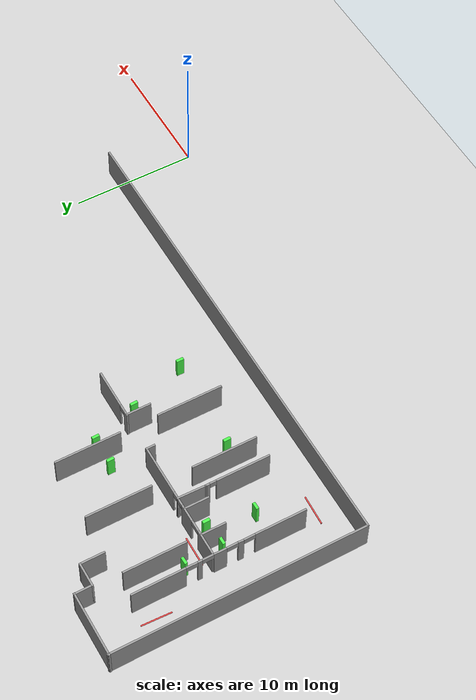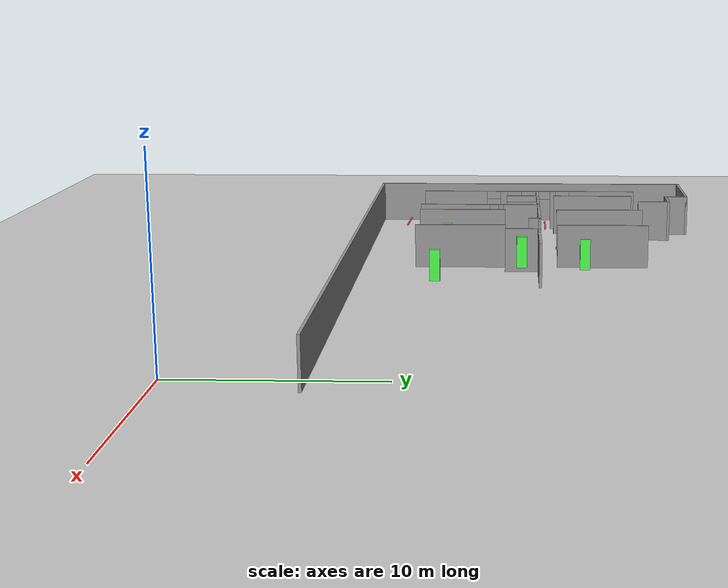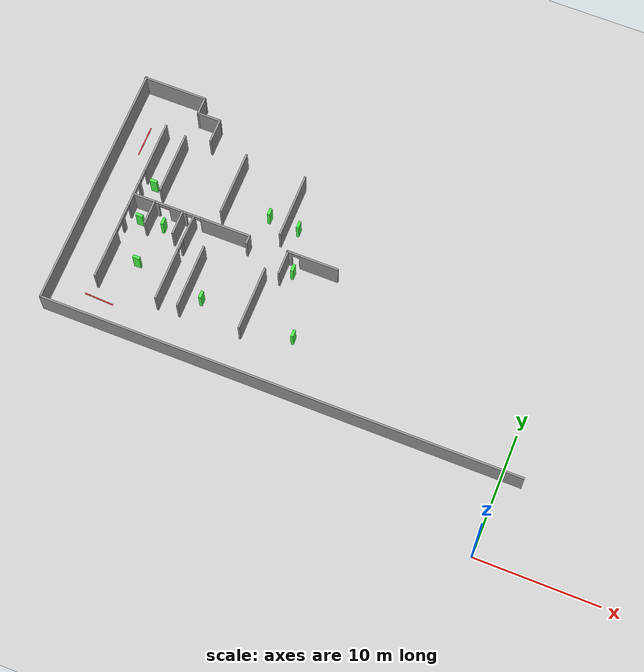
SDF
<sdf version="1.6">
 <world name="default">
  <model name="ground_plane">
   <static>1</static>
   <link name="link">
    <collision name="collision">
     <geometry><plane><normal>0 0 1</normal><size>100 100</size></plane></geometry>
     <surface><friction><ode><mu>100</mu><mu2>50</mu2></ode></friction></surface>
    </collision>
    <visual name="visual">
     <cast_shadows>0</cast_shadows>
     <geometry><plane><normal>0 0 1</normal><size>100 100</size></plane></geometry>
     <material>
      <script><uri>file://media/materials/scripts/gazebo.material</uri><name>Gazebo/Grey</name></script>
     </material>
    </visual>
   </link>
  </model>
  <model name="se1floor1">
   <pose>-5.19256 -0.852459 0 0 -0 0</pose>
   <link name="Wall_0">
    <collision name="Wall_0_Collision">
     <geometry><box><size>20.25 0.15 2.5</size></box></geometry>
     <pose>0 0 1.25 0 -0 0</pose>
    </collision>
    <visual name="Wall_0_Visual">
     <pose>0 0 1.25 0 -0 0</pose>
     <geometry><box><size>20.25 0.15 2.5</size></box></geometry>
     <material>
      <script><uri>file://media/materials/scripts/gazebo.material</uri><name>Gazebo/Grey</name></script>
      <ambient>1 1 1 1</ambient>
     </material>
     <meta><layer>0</layer></meta>
    </visual>
    <pose>-32.1 17.225 0 0 0 -1.5708</pose>
   </link>
   <link name="Wall_1">
    <collision name="Wall_1_Collision">
     <geometry><box><size>39 0.15 2.5</size></box></geometry>
     <pose>0 0 1.25 0 -0 0</pose>
    </collision>
    <visual name="Wall_1_Visual">
     <pose>0 0 1.25 0 -0 0</pose>
     <geometry><box><size>39 0.15 2.5</size></box></geometry>
     <material>
      <script><uri>file://media/materials/scripts/gazebo.material</uri><name>Gazebo/Grey</name></script>
      <ambient>1 1 1 1</ambient>
     </material>
     <meta><layer>0</layer></meta>
    </visual>
    <pose>-12.675 7.175 0 0 -0 0</pose>
   </link>
   <link name="Wall_13">
    <collision name="Wall_13_Collision">
     <geometry><box><size>2 0.15 2.5</size></box></geometry>
     <pose>0 0 1.25 0 -0 0</pose>
    </collision>
    <visual name="Wall_13_Visual">
     <pose>0 0 1.25 0 -0 0</pose>
     <geometry><box><size>2 0.15 2.5</size></box></geometry>
     <material>
      <script><uri>file://media/materials/scripts/gazebo.material</uri><name>Gazebo/Grey</name></script>
      <ambient>1 1 1 1</ambient>
     </material>
     <meta><layer>0</layer></meta>
    </visual>
    <pose>-25.2 24.95 0 0 -0 1.5708</pose>
   </link>
   <link name="Wall_15">
    <collision name="Wall_15_Collision">
     <geometry><box><size>2 0.15 2.5</size></box></geometry>
     <pose>0 0 1.25 0 -0 0</pose>
    </collision>
    <visual name="Wall_15_Visual">
     <pose>0 0 1.25 0 -0 0</pose>
     <geometry><box><size>2 0.15 2.5</size></box></geometry>
     <material>
      <script><uri>file://media/materials/scripts/gazebo.material</uri><name>Gazebo/Grey</name></script>
      <ambient>1 1 1 1</ambient>
     </material>
     <meta><layer>0</layer></meta>
    </visual>
    <pose>-26.125 25.875 0 0 -0 3.14159</pose>
   </link>
   <link name="Wall_16">
    <collision name="Wall_16_Collision">
     <geometry><box><size>1.5 0.15 2.5</size></box></geometry>
     <pose>0 0 1.25 0 -0 0</pose>
    </collision>
    <visual name="Wall_16_Visual">
     <pose>0 0 1.25 0 -0 0</pose>
     <geometry><box><size>1.5 0.15 2.5</size></box></geometry>
     <material>
      <script><uri>file://media/materials/scripts/gazebo.material</uri><name>Gazebo/Grey</name></script>
      <ambient>1 1 1 1</ambient>
     </material>
     <meta><layer>0</layer></meta>
    </visual>
    <pose>-27.05 26.55 0 0 -0 1.5708</pose>
   </link>
   <link name="Wall_17">
    <collision name="Wall_17_Collision">
     <geometry><box><size>5.25 0.15 2.5</size></box></geometry>
     <pose>0 0 1.25 0 -0 0</pose>
    </collision>
    <visual name="Wall_17_Visual">
     <pose>0 0 1.25 0 -0 0</pose>
     <geometry><box><size>5.25 0.15 2.5</size></box></geometry>
     <material>
      <script><uri>file://media/materials/scripts/gazebo.material</uri><name>Gazebo/Grey</name></script>
      <ambient>1 1 1 1</ambient>
     </material>
     <meta><layer>0</layer></meta>
    </visual>
    <pose>-29.6 27.225 0 0 -0 3.14159</pose>
   </link>
   <link name="Wall_19">
    <pose>-28.9578 17.0953 0 0 0 -1.5708</pose>
    <visual name="Wall_19_Visual_0">
     <pose>-4.75272 0 1.25 0 -0 0</pose>
     <geometry><box><size>4.24456 0.15 2.5</size></box></geometry>
     <material>
      <script><uri>file://media/materials/scripts/gazebo.material</uri><name>Gazebo/Grey</name></script>
      <ambient>1 1 1 1</ambient>
     </material>
     <meta><layer>0</layer></meta>
    </visual>
    <collision name="Wall_19_Collision_0">
     <geometry><box><size>4.24456 0.15 2.5</size></box></geometry>
     <pose>-4.75272 0 1.25 0 -0 0</pose>
    </collision>
    <visual name="Wall_19_Visual_1">
     <pose>-1.55236 0 1.25 0 -0 0</pose>
     <geometry><box><size>0.356145 0.15 2.5</size></box></geometry>
     <material>
      <script><uri>file://media/materials/scripts/gazebo.material</uri><name>Gazebo/Grey</name></script>
      <ambient>1 1 1 1</ambient>
     </material>
     <meta><layer>0</layer></meta>
    </visual>
    <collision name="Wall_19_Collision_1">
     <geometry><box><size>0.356145 0.15 2.5</size></box></geometry>
     <pose>-1.55236 0 1.25 0 -0 0</pose>
    </collision>
    <visual name="Wall_19_Visual_2">
     <pose>0.02945 0 1.25 0 -0 0</pose>
     <geometry><box><size>1.00748 0.15 2.5</size></box></geometry>
     <material>
      <script><uri>file://media/materials/scripts/gazebo.material</uri><name>Gazebo/Grey</name></script>
      <ambient>1 1 1 1</ambient>
     </material>
     <meta><layer>0</layer></meta>
    </visual>
    <collision name="Wall_19_Collision_2">
     <geometry><box><size>1.00748 0.15 2.5</size></box></geometry>
     <pose>0.02945 0 1.25 0 -0 0</pose>
    </collision>
    <visual name="Wall_19_Visual_3">
     <pose>1.65779 0 1.25 0 -0 0</pose>
     <geometry><box><size>0.449194 0.15 2.5</size></box></geometry>
     <material>
      <script><uri>file://media/materials/scripts/gazebo.material</uri><name>Gazebo/Grey</name></script>
      <ambient>1 1 1 1</ambient>
     </material>
     <meta><layer>0</layer></meta>
    </visual>
    <collision name="Wall_19_Collision_3">
     <geometry><box><size>0.449194 0.15 2.5</size></box></geometry>
     <pose>1.65779 0 1.25 0 -0 0</pose>
    </collision>
    <visual name="Wall_19_Visual_4">
     <pose>4.82869 0 1.25 0 -0 0</pose>
     <geometry><box><size>4.09262 0.15 2.5</size></box></geometry>
     <material>
      <script><uri>file://media/materials/scripts/gazebo.material</uri><name>Gazebo/Grey</name></script>
      <ambient>1 1 1 1</ambient>
     </material>
     <meta><layer>0</layer></meta>
    </visual>
    <collision name="Wall_19_Collision_4">
     <geometry><box><size>4.09262 0.15 2.5</size></box></geometry>
     <pose>4.82869 0 1.25 0 -0 0</pose>
    </collision>
    <visual name="Wall_19_Visual_5">
     <pose>-2.18044 0 2.25 0 -0 0</pose>
     <geometry><box><size>0.9 0.15 0.5</size></box></geometry>
     <material>
      <script><uri>file://media/materials/scripts/gazebo.material</uri><name>Gazebo/Grey</name></script>
      <ambient>1 1 1 1</ambient>
     </material>
     <meta><layer>0</layer></meta>
    </visual>
    <collision name="Wall_19_Collision_5">
     <geometry><box><size>0.9 0.15 0.5</size></box></geometry>
     <pose>-2.18044 0 2.25 0 -0 0</pose>
    </collision>
    <visual name="Wall_19_Visual_6">
     <pose>-0.92429 0 2.25 0 -0 0</pose>
     <geometry><box><size>0.9 0.15 0.5</size></box></geometry>
     <material>
      <script><uri>file://media/materials/scripts/gazebo.material</uri><name>Gazebo/Grey</name></script>
      <ambient>1 1 1 1</ambient>
     </material>
     <meta><layer>0</layer></meta>
    </visual>
    <collision name="Wall_19_Collision_6">
     <geometry><box><size>0.9 0.15 0.5</size></box></geometry>
     <pose>-0.92429 0 2.25 0 -0 0</pose>
    </collision>
    <visual name="Wall_19_Visual_7">
     <pose>0.983191 0 2.25 0 -0 0</pose>
     <geometry><box><size>0.9 0.15 0.5</size></box></geometry>
     <material>
      <script><uri>file://media/materials/scripts/gazebo.material</uri><name>Gazebo/Grey</name></script>
      <ambient>1 1 1 1</ambient>
     </material>
     <meta><layer>0</layer></meta>
    </visual>
    <collision name="Wall_19_Collision_7">
     <geometry><box><size>0.9 0.15 0.5</size></box></geometry>
     <pose>0.983191 0 2.25 0 -0 0</pose>
    </collision>
    <visual name="Wall_19_Visual_8">
     <pose>2.33238 0 2.25 0 -0 0</pose>
     <geometry><box><size>0.9 0.15 0.5</size></box></geometry>
     <material>
      <script><uri>file://media/materials/scripts/gazebo.material</uri><name>Gazebo/Grey</name></script>
      <ambient>1 1 1 1</ambient>
     </material>
     <meta><layer>0</layer></meta>
    </visual>
    <collision name="Wall_19_Collision_8">
     <geometry><box><size>0.9 0.15 0.5</size></box></geometry>
     <pose>2.33238 0 2.25 0 -0 0</pose>
    </collision>
   </link>
   <link name="Wall_54">
    <collision name="Wall_54_Collision">
     <geometry><box><size>5.25 0.15 2.5</size></box></geometry>
     <pose>0 0 1.25 0 -0 0</pose>
    </collision>
    <visual name="Wall_54_Visual">
     <pose>0 0 1.25 0 -0 0</pose>
     <geometry><box><size>5.25 0.15 2.5</size></box></geometry>
     <material>
      <script><uri>file://media/materials/scripts/gazebo.material</uri><name>Gazebo/Grey</name></script>
      <ambient>1 1 1 1</ambient>
     </material>
     <meta><layer>0</layer></meta>
    </visual>
    <pose>-17.1338 12.9629 0 0 0 -1.5708</pose>
   </link>
   <link name="Wall_56">
    <collision name="Wall_56_Collision">
     <geometry><box><size>5.25 0.15 2.5</size></box></geometry>
     <pose>0 0 1.25 0 -0 0</pose>
    </collision>
    <visual name="Wall_56_Visual">
     <pose>0 0 1.25 0 -0 0</pose>
     <geometry><box><size>5.25 0.15 2.5</size></box></geometry>
     <material>
      <script><uri>file://media/materials/scripts/gazebo.material</uri><name>Gazebo/Grey</name></script>
      <ambient>1 1 1 1</ambient>
     </material>
     <meta><layer>0</layer></meta>
    </visual>
    <pose>-22.163 12.9094 0 0 0 -1.5708</pose>
   </link>
   <link name="Wall_58">
    <pose>-23.9286 12.8559 0 0 0 -1.5708</pose>
    <visual name="Wall_58_Visual_0">
     <pose>-2.4292 0 1.25 0 -0 0</pose>
     <geometry><box><size>0.391598 0.15 2.5</size></box></geometry>
     <material>
      <script><uri>file://media/materials/scripts/gazebo.material</uri><name>Gazebo/Grey</name></script>
      <ambient>1 1 1 1</ambient>
     </material>
     <meta><layer>0</layer></meta>
    </visual>
    <collision name="Wall_58_Collision_0">
     <geometry><box><size>0.391598 0.15 2.5</size></box></geometry>
     <pose>-2.4292 0 1.25 0 -0 0</pose>
    </collision>
    <visual name="Wall_58_Visual_1">
     <pose>0.45472 0 1.25 0 -0 0</pose>
     <geometry><box><size>4.34056 0.15 2.5</size></box></geometry>
     <material>
      <script><uri>file://media/materials/scripts/gazebo.material</uri><name>Gazebo/Grey</name></script>
      <ambient>1 1 1 1</ambient>
     </material>
     <meta><layer>0</layer></meta>
    </visual>
    <collision name="Wall_58_Collision_1">
     <geometry><box><size>4.34056 0.15 2.5</size></box></geometry>
     <pose>0.45472 0 1.25 0 -0 0</pose>
    </collision>
    <visual name="Wall_58_Visual_2">
     <pose>-1.97448 0 2.25 0 -0 0</pose>
     <geometry><box><size>0.517842 0.15 0.5</size></box></geometry>
     <material>
      <script><uri>file://media/materials/scripts/gazebo.material</uri><name>Gazebo/Grey</name></script>
      <ambient>1 1 1 1</ambient>
     </material>
     <meta><layer>0</layer></meta>
    </visual>
    <collision name="Wall_58_Collision_2">
     <geometry><box><size>0.517842 0.15 0.5</size></box></geometry>
     <pose>-1.97448 0 2.25 0 -0 0</pose>
    </collision>
   </link>
   <link name="Wall_60">
    <pose>-24.0508 17.5995 0 0 -0 0</pose>
    <visual name="Wall_60_Visual_0">
     <pose>-3.833 0 1.25 0 -0 0</pose>
     <geometry><box><size>2.084 0.15 2.5</size></box></geometry>
     <material>
      <script><uri>file://media/materials/scripts/gazebo.material</uri><name>Gazebo/Grey</name></script>
      <ambient>1 1 1 1</ambient>
     </material>
     <meta><layer>0</layer></meta>
    </visual>
    <collision name="Wall_60_Collision_0">
     <geometry><box><size>2.084 0.15 2.5</size></box></geometry>
     <pose>-3.833 0 1.25 0 -0 0</pose>
    </collision>
    <visual name="Wall_60_Visual_1">
     <pose>-1.18501 0 1.25 0 -0 0</pose>
     <geometry><box><size>1.41198 0.15 2.5</size></box></geometry>
     <material>
      <script><uri>file://media/materials/scripts/gazebo.material</uri><name>Gazebo/Grey</name></script>
      <ambient>1 1 1 1</ambient>
     </material>
     <meta><layer>0</layer></meta>
    </visual>
    <collision name="Wall_60_Collision_1">
     <geometry><box><size>1.41198 0.15 2.5</size></box></geometry>
     <pose>-1.18501 0 1.25 0 -0 0</pose>
    </collision>
    <visual name="Wall_60_Visual_2">
     <pose>0.144387 0 1.25 0 -0 0</pose>
     <geometry><box><size>0.191206 0.15 2.5</size></box></geometry>
     <material>
      <script><uri>file://media/materials/scripts/gazebo.material</uri><name>Gazebo/Grey</name></script>
      <ambient>1 1 1 1</ambient>
     </material>
     <meta><layer>0</layer></meta>
    </visual>
    <collision name="Wall_60_Collision_2">
     <geometry><box><size>0.191206 0.15 2.5</size></box></geometry>
     <pose>0.144387 0 1.25 0 -0 0</pose>
    </collision>
    <visual name="Wall_60_Visual_3">
     <pose>2.7963 0 1.25 0 -0 0</pose>
     <geometry><box><size>4.1574 0.15 2.5</size></box></geometry>
     <material>
      <script><uri>file://media/materials/scripts/gazebo.material</uri><name>Gazebo/Grey</name></script>
      <ambient>1 1 1 1</ambient>
     </material>
     <meta><layer>0</layer></meta>
    </visual>
    <collision name="Wall_60_Collision_3">
     <geometry><box><size>4.1574 0.15 2.5</size></box></geometry>
     <pose>2.7963 0 1.25 0 -0 0</pose>
    </collision>
    <visual name="Wall_60_Visual_4">
     <pose>-2.341 0 2.25 0 -0 0</pose>
     <geometry><box><size>0.9 0.15 0.5</size></box></geometry>
     <material>
      <script><uri>file://media/materials/scripts/gazebo.material</uri><name>Gazebo/Grey</name></script>
      <ambient>1 1 1 1</ambient>
     </material>
     <meta><layer>0</layer></meta>
    </visual>
    <collision name="Wall_60_Collision_4">
     <geometry><box><size>0.9 0.15 0.5</size></box></geometry>
     <pose>-2.341 0 2.25 0 -0 0</pose>
    </collision>
    <visual name="Wall_60_Visual_5">
     <pose>-0.21512 0 2.25 0 -0 0</pose>
     <geometry><box><size>0.527809 0.15 0.5</size></box></geometry>
     <material>
      <script><uri>file://media/materials/scripts/gazebo.material</uri><name>Gazebo/Grey</name></script>
      <ambient>1 1 1 1</ambient>
     </material>
     <meta><layer>0</layer></meta>
    </visual>
    <collision name="Wall_60_Collision_5">
     <geometry><box><size>0.527809 0.15 0.5</size></box></geometry>
     <pose>-0.21512 0 2.25 0 -0 0</pose>
    </collision>
    <visual name="Wall_60_Visual_6">
     <pose>0.478798 0 2.25 0 -0 0</pose>
     <geometry><box><size>0.477615 0.15 0.5</size></box></geometry>
     <material>
      <script><uri>file://media/materials/scripts/gazebo.material</uri><name>Gazebo/Grey</name></script>
      <ambient>1 1 1 1</ambient>
     </material>
     <meta><layer>0</layer></meta>
    </visual>
    <collision name="Wall_60_Collision_6">
     <geometry><box><size>0.477615 0.15 0.5</size></box></geometry>
     <pose>0.478798 0 2.25 0 -0 0</pose>
    </collision>
   </link>
   <link name="Wall_61">
    <collision name="Wall_61_Collision">
     <geometry><box><size>0.75 0.15 2.5</size></box></geometry>
     <pose>0 0 1.25 0 -0 0</pose>
    </collision>
    <visual name="Wall_61_Visual">
     <pose>0 0 1.25 0 -0 0</pose>
     <geometry><box><size>0.75 0.15 2.5</size></box></geometry>
     <material>
      <script><uri>file://media/materials/scripts/gazebo.material</uri><name>Gazebo/Grey</name></script>
      <ambient>1 1 1 1</ambient>
     </material>
     <meta><layer>0</layer></meta>
    </visual>
    <pose>-19.2508 17.2995 0 0 0 -1.5708</pose>
   </link>
   <link name="Wall_63">
    <collision name="Wall_63_Collision">
     <geometry><box><size>2 0.15 2.5</size></box></geometry>
     <pose>0 0 1.25 0 -0 0</pose>
    </collision>
    <visual name="Wall_63_Visual">
     <pose>0 0 1.25 0 -0 0</pose>
     <geometry><box><size>2 0.15 2.5</size></box></geometry>
     <material>
      <script><uri>file://media/materials/scripts/gazebo.material</uri><name>Gazebo/Grey</name></script>
      <ambient>1 1 1 1</ambient>
     </material>
     <meta><layer>0</layer></meta>
    </visual>
    <pose>-27.1922 16.621 0 0 0 -1.5708</pose>
   </link>
   <link name="Wall_65">
    <collision name="Wall_65_Collision">
     <geometry><box><size>2 0.15 2.5</size></box></geometry>
     <pose>0 0 1.25 0 -0 0</pose>
    </collision>
    <visual name="Wall_65_Visual">
     <pose>0 0 1.25 0 -0 0</pose>
     <geometry><box><size>2 0.15 2.5</size></box></geometry>
     <material>
      <script><uri>file://media/materials/scripts/gazebo.material</uri><name>Gazebo/Grey</name></script>
      <ambient>1 1 1 1</ambient>
     </material>
     <meta><layer>0</layer></meta>
    </visual>
    <pose>-24.8381 16.621 0 0 0 -1.5708</pose>
   </link>
   <link name="Wall_67">
    <collision name="Wall_67_Collision">
     <geometry><box><size>2.34425 0.15 2.5</size></box></geometry>
     <pose>0 0 1.25 0 -0 0</pose>
    </collision>
    <visual name="Wall_67_Visual">
     <pose>0 0 1.25 0 -0 0</pose>
     <geometry><box><size>2.34425 0.15 2.5</size></box></geometry>
     <material>
      <script><uri>file://media/materials/scripts/gazebo.material</uri><name>Gazebo/Grey</name></script>
      <ambient>1 1 1 1</ambient>
     </material>
     <meta><layer>0</layer></meta>
    </visual>
    <pose>-23.9018 16.5027 0 0 0 -1.59518</pose>
   </link>
   <link name="Wall_69">
    <collision name="Wall_69_Collision">
     <geometry><box><size>2 0.15 2.5</size></box></geometry>
     <pose>0 0 1.25 0 -0 0</pose>
    </collision>
    <visual name="Wall_69_Visual">
     <pose>0 0 1.25 0 -0 0</pose>
     <geometry><box><size>2 0.15 2.5</size></box></geometry>
     <material>
      <script><uri>file://media/materials/scripts/gazebo.material</uri><name>Gazebo/Grey</name></script>
      <ambient>1 1 1 1</ambient>
     </material>
     <meta><layer>0</layer></meta>
    </visual>
    <pose>-16.0102 16.5449 0 0 -0 1.5708</pose>
   </link>
   <link name="Wall_71">
    <pose>-14.0084 17.504 0 0 -0 3.14159</pose>
    <visual name="Wall_71_Visual_0">
     <pose>-0.528402 0 1.25 0 -0 0</pose>
     <geometry><box><size>3.1932 0.15 2.5</size></box></geometry>
     <material>
      <script><uri>file://media/materials/scripts/gazebo.material</uri><name>Gazebo/Grey</name></script>
      <ambient>1 1 1 1</ambient>
     </material>
     <meta><layer>0</layer></meta>
    </visual>
    <collision name="Wall_71_Collision_0">
     <geometry><box><size>3.1932 0.15 2.5</size></box></geometry>
     <pose>-0.528402 0 1.25 0 -0 0</pose>
    </collision>
    <visual name="Wall_71_Visual_1">
     <pose>1.89575 0 1.25 0 -0 0</pose>
     <geometry><box><size>0.458508 0.15 2.5</size></box></geometry>
     <material>
      <script><uri>file://media/materials/scripts/gazebo.material</uri><name>Gazebo/Grey</name></script>
      <ambient>1 1 1 1</ambient>
     </material>
     <meta><layer>0</layer></meta>
    </visual>
    <collision name="Wall_71_Collision_1">
     <geometry><box><size>0.458508 0.15 2.5</size></box></geometry>
     <pose>1.89575 0 1.25 0 -0 0</pose>
    </collision>
    <visual name="Wall_71_Visual_2">
     <pose>1.36734 0 2.25 0 -0 0</pose>
     <geometry><box><size>0.598296 0.15 0.5</size></box></geometry>
     <material>
      <script><uri>file://media/materials/scripts/gazebo.material</uri><name>Gazebo/Grey</name></script>
      <ambient>1 1 1 1</ambient>
     </material>
     <meta><layer>0</layer></meta>
    </visual>
    <collision name="Wall_71_Collision_2">
     <geometry><box><size>0.598296 0.15 0.5</size></box></geometry>
     <pose>1.36734 0 2.25 0 -0 0</pose>
    </collision>
   </link>
   <link name="Wall_76">
    <collision name="Wall_76_Collision">
     <geometry><box><size>5 0.15 2.5</size></box></geometry>
     <pose>0 0 1.25 0 -0 0</pose>
    </collision>
    <visual name="Wall_76_Visual">
     <pose>0 0 1.25 0 -0 0</pose>
     <geometry><box><size>5 0.15 2.5</size></box></geometry>
     <material>
      <script><uri>file://media/materials/scripts/gazebo.material</uri><name>Gazebo/Grey</name></script>
      <ambient>1 1 1 1</ambient>
     </material>
     <meta><layer>0</layer></meta>
    </visual>
    <pose>-27.1922 21.1668 0 0 0 -1.5708</pose>
   </link>
   <link name="Wall_82">
    <collision name="Wall_82_Collision">
     <geometry><box><size>5.25 0.15 2.5</size></box></geometry>
     <pose>0 0 1.25 0 -0 0</pose>
    </collision>
    <visual name="Wall_82_Visual">
     <pose>0 0 1.25 0 -0 0</pose>
     <geometry><box><size>5.25 0.15 2.5</size></box></geometry>
     <material>
      <script><uri>file://media/materials/scripts/gazebo.material</uri><name>Gazebo/Grey</name></script>
      <ambient>1 1 1 1</ambient>
     </material>
     <meta><layer>0</layer></meta>
    </visual>
    <pose>-22.1095 21.3093 0 0 0 -1.5708</pose>
   </link>
   <link name="Wall_84">
    <collision name="Wall_84_Collision">
     <geometry><box><size>5.25 0.15 2.5</size></box></geometry>
     <pose>0 0 1.25 0 -0 0</pose>
    </collision>
    <visual name="Wall_84_Visual">
     <pose>0 0 1.25 0 -0 0</pose>
     <geometry><box><size>5.25 0.15 2.5</size></box></geometry>
     <material>
      <script><uri>file://media/materials/scripts/gazebo.material</uri><name>Gazebo/Grey</name></script>
      <ambient>1 1 1 1</ambient>
     </material>
     <meta><layer>0</layer></meta>
    </visual>
    <pose>-17.1338 21.2023 0 0 0 -1.5708</pose>
   </link>
   <static>1</static>
  </model>
  <model name="copyRoom">
   <link name="link">
    <inertial>
     <mass>1</mass>
     <inertia>
      <ixx>0.166667</ixx>
      <ixy>0</ixy>
      <ixz>0</ixz>
      <iyy>0.166667</iyy>
      <iyz>0</iyz>
      <izz>0.166667</izz>
     </inertia>
    </inertial>
    <visual name="visual">
     <geometry><box><size>0.228088 0.575919 1.77726</size></box></geometry>
     <material>
      <script><name>Gazebo/Grey</name><uri>file://media/materials/scripts/gazebo.material</uri></script>
      <ambient>0.3 1 0.3 1</ambient>
      <diffuse>0.7 0.7 0.7 1</diffuse>
      <specular>0.01 0.01 0.01 1</specular>
      <emissive>0 0 0 1</emissive>
      <shader type="vertex"><normal_map>__default__</normal_map></shader>
     </material>
    </visual>
    <collision name="collision">
     <geometry><box><size>0.228088 0.575919 1.77726</size></box></geometry>
     <surface>
      <friction>
       <ode><mu>1</mu><mu2>1</mu2><fdir1>0 0 0</fdir1><slip1>0</slip1><slip2>0</slip2></ode>
       <torsional>
        <coefficient>1</coefficient>
        <patch_radius>0</patch_radius>
        <surface_radius>0</surface_radius>
        <use_patch_radius>1</use_patch_radius>
        <ode><slip>0</slip></ode>
       </torsional>
      </friction>
      <bounce><restitution_coefficient>0</restitution_coefficient><threshold>1e+06</threshold></bounce>
      <contact>
       <collide_without_contact>0</collide_without_contact>
       <collide_without_contact_bitmask>1</collide_without_contact_bitmask>
       <collide_bitmask>1</collide_bitmask>
       <ode>
        <soft_cfm>0</soft_cfm>
        <soft_erp>0.2</soft_erp>
        <kp>1e+13</kp>
        <kd>1</kd>
        <max_vel>0.01</max_vel>
        <min_depth>0</min_depth>
       </ode>
       <bullet>
        <split_impulse>1</split_impulse>
        <split_impulse_penetration_threshold>-0.01</split_impulse_penetration_threshold>
        <soft_cfm>0</soft_cfm>
        <soft_erp>0.2</soft_erp>
        <kp>1e+13</kp>
        <kd>1</kd>
       </bullet>
      </contact>
     </surface>
    </collision>
   </link>
   <static>1</static>
   <pose>-33.3065 18.5538 1.01807 0 -0 1.5941</pose>
  </model>
  <model name="corridor1">
   <link name="link">
    <inertial>
     <mass>1</mass>
     <inertia><ixx>0.145833</ixx><ixy>0</ixy><ixz>0</ixz><iyy>0.145833</iyy><iyz>0</iyz><izz>0.125</izz></inertia>
    </inertial>
    <visual name="visual">
     <geometry><cylinder><radius>0.0529335</radius><length>2.39992</length></cylinder></geometry>
     <material>
      <script><name>Gazebo/Grey</name><uri>file://media/materials/scripts/gazebo.material</uri></script>
      <ambient>1 0.3 0.3 1</ambient>
      <diffuse>0.7 0.7 0.7 1</diffuse>
      <specular>0.01 0.01 0.01 1</specular>
      <emissive>0 0 0 1</emissive>
      <shader type="vertex"><normal_map>__default__</normal_map></shader>
     </material>
    </visual>
    <collision name="collision">
     <geometry><cylinder><radius>0.052934</radius><length>2.39992</length></cylinder></geometry>
     <surface>
      <friction>
       <ode><mu>1</mu><mu2>1</mu2><fdir1>0 0 0</fdir1><slip1>0</slip1><slip2>0</slip2></ode>
       <torsional>
        <coefficient>1</coefficient>
        <patch_radius>0</patch_radius>
        <surface_radius>0</surface_radius>
        <use_patch_radius>1</use_patch_radius>
        <ode><slip>0</slip></ode>
       </torsional>
      </friction>
      <bounce><restitution_coefficient>0</restitution_coefficient><threshold>1e+06</threshold></bounce>
      <contact>
       <collide_without_contact>0</collide_without_contact>
       <collide_without_contact_bitmask>1</collide_without_contact_bitmask>
       <collide_bitmask>1</collide_bitmask>
       <ode>
        <soft_cfm>0</soft_cfm>
        <soft_erp>0.2</soft_erp>
        <kp>1e+13</kp>
        <kd>1</kd>
        <max_vel>0.01</max_vel>
        <min_depth>0</min_depth>
       </ode>
       <bullet>
        <split_impulse>1</split_impulse>
        <split_impulse_penetration_threshold>-0.01</split_impulse_penetration_threshold>
        <soft_cfm>0</soft_cfm>
        <soft_erp>0.2</soft_erp>
        <kp>1e+13</kp>
        <kd>1</kd>
       </bullet>
      </contact>
     </surface>
    </collision>
   </link>
   <static>1</static>
   <pose>-35.6885 22 0.55 1.50384 -0.001095 3.12533</pose>
  </model>
  <model name="mailRoom">
   <link name="link">
    <inertial>
     <mass>1</mass>
     <inertia>
      <ixx>0.166667</ixx>
      <ixy>0</ixy>
      <ixz>0</ixz>
      <iyy>0.166667</iyy>
      <iyz>0</iyz>
      <izz>0.166667</izz>
     </inertia>
    </inertial>
    <visual name="visual">
     <geometry><box><size>0.228088 0.575919 1.77726</size></box></geometry>
     <material>
      <script><name>Gazebo/Grey</name><uri>file://media/materials/scripts/gazebo.material</uri></script>
      <ambient>0.3 1 0.3 1</ambient>
      <diffuse>0.7 0.7 0.7 1</diffuse>
      <specular>0.01 0.01 0.01 1</specular>
      <emissive>0 0 0 1</emissive>
      <shader type="vertex"><normal_map>__default__</normal_map></shader>
     </material>
    </visual>
    <collision name="collision">
     <geometry><box><size>0.228088 0.575919 1.77726</size></box></geometry>
     <surface>
      <friction>
       <ode><mu>1</mu><mu2>1</mu2><fdir1>0 0 0</fdir1><slip1>0</slip1><slip2>0</slip2></ode>
       <torsional>
        <coefficient>1</coefficient>
        <patch_radius>0</patch_radius>
        <surface_radius>0</surface_radius>
        <use_patch_radius>1</use_patch_radius>
        <ode><slip>0</slip></ode>
       </torsional>
      </friction>
      <bounce><restitution_coefficient>0</restitution_coefficient><threshold>1e+06</threshold></bounce>
      <contact>
       <collide_without_contact>0</collide_without_contact>
       <collide_without_contact_bitmask>1</collide_without_contact_bitmask>
       <collide_bitmask>1</collide_bitmask>
       <ode>
        <soft_cfm>0</soft_cfm>
        <soft_erp>0.2</soft_erp>
        <kp>1e+13</kp>
        <kd>1</kd>
        <max_vel>0.01</max_vel>
        <min_depth>0</min_depth>
       </ode>
       <bullet>
        <split_impulse>1</split_impulse>
        <split_impulse_penetration_threshold>-0.01</split_impulse_penetration_threshold>
        <soft_cfm>0</soft_cfm>
        <soft_erp>0.2</soft_erp>
        <kp>1e+13</kp>
        <kd>1</kd>
       </bullet>
      </contact>
     </surface>
    </collision>
   </link>
   <static>1</static>
   <pose>-33.185 15.5031 0.958681 0 -0 1.56694</pose>
  </model>
  <model name="meetingRoom1Door1">
   <link name="link">
    <inertial>
     <mass>1</mass>
     <inertia>
      <ixx>0.166667</ixx>
      <ixy>0</ixy>
      <ixz>0</ixz>
      <iyy>0.166667</iyy>
      <iyz>0</iyz>
      <izz>0.166667</izz>
     </inertia>
    </inertial>
    <visual name="visual">
     <geometry><box><size>0.228088 0.575919 1.77726</size></box></geometry>
     <material>
      <script><name>Gazebo/Grey</name><uri>file://media/materials/scripts/gazebo.material</uri></script>
      <ambient>0.3 1 0.3 1</ambient>
      <diffuse>0.7 0.7 0.7 1</diffuse>
      <specular>0.01 0.01 0.01 1</specular>
      <emissive>0 0 0 1</emissive>
      <shader type="vertex"><normal_map>__default__</normal_map></shader>
     </material>
    </visual>
    <collision name="collision">
     <geometry><box><size>0.228088 0.575919 1.77726</size></box></geometry>
     <surface>
      <friction>
       <ode><mu>1</mu><mu2>1</mu2><fdir1>0 0 0</fdir1><slip1>0</slip1><slip2>0</slip2></ode>
       <torsional>
        <coefficient>1</coefficient>
        <patch_radius>0</patch_radius>
        <surface_radius>0</surface_radius>
        <use_patch_radius>1</use_patch_radius>
        <ode><slip>0</slip></ode>
       </torsional>
      </friction>
      <bounce><restitution_coefficient>0</restitution_coefficient><threshold>1e+06</threshold></bounce>
      <contact>
       <collide_without_contact>0</collide_without_contact>
       <collide_without_contact_bitmask>1</collide_without_contact_bitmask>
       <collide_bitmask>1</collide_bitmask>
       <ode>
        <soft_cfm>0</soft_cfm>
        <soft_erp>0.2</soft_erp>
        <kp>1e+13</kp>
        <kd>1</kd>
        <max_vel>0.01</max_vel>
        <min_depth>0</min_depth>
       </ode>
       <bullet>
        <split_impulse>1</split_impulse>
        <split_impulse_penetration_threshold>-0.01</split_impulse_penetration_threshold>
        <soft_cfm>0</soft_cfm>
        <soft_erp>0.2</soft_erp>
        <kp>1e+13</kp>
        <kd>1</kd>
       </bullet>
      </contact>
     </surface>
    </collision>
   </link>
   <static>1</static>
   <pose>-31.9547 12.1365 1.05504 0 -0 1.58303</pose>
  </model>
  <model name="kitchen1">
   <link name="link">
    <inertial>
     <mass>1</mass>
     <inertia>
      <ixx>0.166667</ixx>
      <ixy>0</ixy>
      <ixz>0</ixz>
      <iyy>0.166667</iyy>
      <iyz>0</iyz>
      <izz>0.166667</izz>
     </inertia>
    </inertial>
    <visual name="visual">
     <geometry><box><size>0.228088 0.575919 1.77726</size></box></geometry>
     <material>
      <script><name>Gazebo/Grey</name><uri>file://media/materials/scripts/gazebo.material</uri></script>
      <ambient>0.3 1 0.3 1</ambient>
      <diffuse>0.7 0.7 0.7 1</diffuse>
      <specular>0.01 0.01 0.01 1</specular>
      <emissive>0 0 0 1</emissive>
      <shader type="vertex"><normal_map>__default__</normal_map></shader>
     </material>
    </visual>
    <collision name="collision">
     <geometry><box><size>0.228088 0.575919 1.77726</size></box></geometry>
     <surface>
      <friction>
       <ode><mu>1</mu><mu2>1</mu2><fdir1>0 0 0</fdir1><slip1>0</slip1><slip2>0</slip2></ode>
       <torsional>
        <coefficient>1</coefficient>
        <patch_radius>0</patch_radius>
        <surface_radius>0</surface_radius>
        <use_patch_radius>1</use_patch_radius>
        <ode><slip>0</slip></ode>
       </torsional>
      </friction>
      <bounce><restitution_coefficient>0</restitution_coefficient><threshold>1e+06</threshold></bounce>
      <contact>
       <collide_without_contact>0</collide_without_contact>
       <collide_without_contact_bitmask>1</collide_without_contact_bitmask>
       <collide_bitmask>1</collide_bitmask>
       <ode>
        <soft_cfm>0</soft_cfm>
        <soft_erp>0.2</soft_erp>
        <kp>1e+13</kp>
        <kd>1</kd>
        <max_vel>0.01</max_vel>
        <min_depth>0</min_depth>
       </ode>
       <bullet>
        <split_impulse>1</split_impulse>
        <split_impulse_penetration_threshold>-0.01</split_impulse_penetration_threshold>
        <soft_cfm>0</soft_cfm>
        <soft_erp>0.2</soft_erp>
        <kp>1e+13</kp>
        <kd>1</kd>
       </bullet>
      </contact>
     </surface>
    </collision>
   </link>
   <static>1</static>
   <pose>-26.1561 11.1692 0.958681 0 0 -3.12637</pose>
  </model>
  <model name="corridor3">
   <link name="link">
    <inertial>
     <mass>1</mass>
     <inertia><ixx>0.145833</ixx><ixy>0</ixy><ixz>0</ixz><iyy>0.145833</iyy><iyz>0</iyz><izz>0.125</izz></inertia>
    </inertial>
    <visual name="visual">
     <geometry><cylinder><radius>0.0529335</radius><length>2.39991</length></cylinder></geometry>
     <material>
      <script><name>Gazebo/Grey</name><uri>file://media/materials/scripts/gazebo.material</uri></script>
      <ambient>1 0.3 0.3 1</ambient>
      <diffuse>0.7 0.7 0.7 1</diffuse>
      <specular>0.01 0.01 0.01 1</specular>
      <emissive>0 0 0 1</emissive>
      <shader type="vertex"><normal_map>__default__</normal_map></shader>
     </material>
    </visual>
    <collision name="collision">
     <geometry><cylinder><radius>0.052934</radius><length>2.39991</length></cylinder></geometry>
     <surface>
      <friction>
       <ode><mu>1</mu><mu2>1</mu2><fdir1>0 0 0</fdir1><slip1>0</slip1><slip2>0</slip2></ode>
       <torsional>
        <coefficient>1</coefficient>
        <patch_radius>0</patch_radius>
        <surface_radius>0</surface_radius>
        <use_patch_radius>1</use_patch_radius>
        <ode><slip>0</slip></ode>
       </torsional>
      </friction>
      <bounce><restitution_coefficient>0</restitution_coefficient><threshold>1e+06</threshold></bounce>
      <contact>
       <collide_without_contact>0</collide_without_contact>
       <collide_without_contact_bitmask>1</collide_without_contact_bitmask>
       <collide_bitmask>1</collide_bitmask>
       <ode>
        <soft_cfm>0</soft_cfm>
        <soft_erp>0.2</soft_erp>
        <kp>1e+13</kp>
        <kd>1</kd>
        <max_vel>0.01</max_vel>
        <min_depth>0</min_depth>
       </ode>
       <bullet>
        <split_impulse>1</split_impulse>
        <split_impulse_penetration_threshold>-0.01</split_impulse_penetration_threshold>
        <soft_cfm>0</soft_cfm>
        <soft_erp>0.2</soft_erp>
        <kp>1e+13</kp>
        <kd>1</kd>
       </bullet>
      </contact>
     </surface>
    </collision>
   </link>
   <static>1</static>
   <pose>-33.5553 8.3462 0.55 1.56813 0.06691 -1.61059</pose>
  </model>
  <model name="corridor2">
   <link name="link">
    <inertial>
     <mass>1</mass>
     <inertia><ixx>0.145833</ixx><ixy>0</ixy><ixz>0</ixz><iyy>0.145833</iyy><iyz>0</iyz><izz>0.125</izz></inertia>
    </inertial>
    <visual name="visual">
     <geometry><cylinder><radius>0.0529335</radius><length>2.39991</length></cylinder></geometry>
     <material>
      <script><name>Gazebo/Grey</name><uri>file://media/materials/scripts/gazebo.material</uri></script>
      <ambient>1 0.3 0.3 1</ambient>
      <diffuse>0.7 0.7 0.7 1</diffuse>
      <specular>0.01 0.01 0.01 1</specular>
      <emissive>0 0 0 1</emissive>
      <shader type="vertex"><normal_map>__default__</normal_map></shader>
     </material>
    </visual>
    <collision name="collision">
     <geometry><cylinder><radius>0.052934</radius><length>2.39991</length></cylinder></geometry>
     <surface>
      <friction>
       <ode><mu>1</mu><mu2>1</mu2><fdir1>0 0 0</fdir1><slip1>0</slip1><slip2>0</slip2></ode>
       <torsional>
        <coefficient>1</coefficient>
        <patch_radius>0</patch_radius>
        <surface_radius>0</surface_radius>
        <use_patch_radius>1</use_patch_radius>
        <ode><slip>0</slip></ode>
       </torsional>
      </friction>
      <bounce><restitution_coefficient>0</restitution_coefficient><threshold>1e+06</threshold></bounce>
      <contact>
       <collide_without_contact>0</collide_without_contact>
       <collide_without_contact_bitmask>1</collide_without_contact_bitmask>
       <collide_bitmask>1</collide_bitmask>
       <ode>
        <soft_cfm>0</soft_cfm>
        <soft_erp>0.2</soft_erp>
        <kp>1e+13</kp>
        <kd>1</kd>
        <max_vel>0.01</max_vel>
        <min_depth>0</min_depth>
       </ode>
       <bullet>
        <split_impulse>1</split_impulse>
        <split_impulse_penetration_threshold>-0.01</split_impulse_penetration_threshold>
        <soft_cfm>0</soft_cfm>
        <soft_erp>0.2</soft_erp>
        <kp>1e+13</kp>
        <kd>1</kd>
       </bullet>
      </contact>
     </surface>
    </collision>
   </link>
   <static>1</static>
   <pose>-32.40 17.2656 0.55 1.57126 -0.066961 1.56394</pose>
  </model>
  <model name="officeJohn">
   <link name="link">
    <inertial>
     <mass>1</mass>
     <inertia>
      <ixx>0.166667</ixx>
      <ixy>0</ixy>
      <ixz>0</ixz>
      <iyy>0.166667</iyy>
      <iyz>0</iyz>
      <izz>0.166667</izz>
     </inertia>
    </inertial>
    <visual name="visual">
     <geometry><box><size>0.228088 0.575919 1.77726</size></box></geometry>
     <material>
      <script><name>Gazebo/Grey</name><uri>file://media/materials/scripts/gazebo.material</uri></script>
      <ambient>0.3 1 0.3 1</ambient>
      <diffuse>0.7 0.7 0.7 1</diffuse>
      <specular>0.01 0.01 0.01 1</specular>
      <emissive>0 0 0 1</emissive>
      <shader type="vertex"><normal_map>__default__</normal_map></shader>
     </material>
    </visual>
    <collision name="collision">
     <geometry><box><size>0.228088 0.575919 1.77726</size></box></geometry>
     <surface>
      <friction>
       <ode><mu>1</mu><mu2>1</mu2><fdir1>0 0 0</fdir1><slip1>0</slip1><slip2>0</slip2></ode>
       <torsional>
        <coefficient>1</coefficient>
        <patch_radius>0</patch_radius>
        <surface_radius>0</surface_radius>
        <use_patch_radius>1</use_patch_radius>
        <ode><slip>0</slip></ode>
       </torsional>
      </friction>
      <bounce><restitution_coefficient>0</restitution_coefficient><threshold>1e+06</threshold></bounce>
      <contact>
       <collide_without_contact>0</collide_without_contact>
       <collide_without_contact_bitmask>1</collide_without_contact_bitmask>
       <collide_bitmask>1</collide_bitmask>
       <ode>
        <soft_cfm>0</soft_cfm>
        <soft_erp>0.2</soft_erp>
        <kp>1e+13</kp>
        <kd>1</kd>
        <max_vel>0.01</max_vel>
        <min_depth>0</min_depth>
       </ode>
       <bullet>
        <split_impulse>1</split_impulse>
        <split_impulse_penetration_threshold>-0.01</split_impulse_penetration_threshold>
        <soft_cfm>0</soft_cfm>
        <soft_erp>0.2</soft_erp>
        <kp>1e+13</kp>
        <kd>1</kd>
       </bullet>
      </contact>
     </surface>
    </collision>
   </link>
   <static>1</static>
   <pose>-31.2758 15.7127 0.958681 0 0 -3.12637</pose>
  </model>
  <model name="classroom3">
   <link name="link">
    <inertial>
     <mass>1</mass>
     <inertia>
      <ixx>0.166667</ixx>
      <ixy>0</ixy>
      <ixz>0</ixz>
      <iyy>0.166667</iyy>
      <iyz>0</iyz>
      <izz>0.166667</izz>
     </inertia>
    </inertial>
    <visual name="visual">
     <geometry><box><size>0.228088 0.575919 1.77726</size></box></geometry>
     <material>
      <script><name>Gazebo/Grey</name><uri>file://media/materials/scripts/gazebo.material</uri></script>
      <ambient>0.3 1 0.3 1</ambient>
      <diffuse>0.7 0.7 0.7 1</diffuse>
      <specular>0.01 0.01 0.01 1</specular>
      <emissive>0 0 0 1</emissive>
      <shader type="vertex"><normal_map>__default__</normal_map></shader>
     </material>
    </visual>
    <collision name="collision">
     <geometry><box><size>0.228088 0.575919 1.77726</size></box></geometry>
     <surface>
      <friction>
       <ode><mu>1</mu><mu2>1</mu2><fdir1>0 0 0</fdir1><slip1>0</slip1><slip2>0</slip2></ode>
       <torsional>
        <coefficient>1</coefficient>
        <patch_radius>0</patch_radius>
        <surface_radius>0</surface_radius>
        <use_patch_radius>1</use_patch_radius>
        <ode><slip>0</slip></ode>
       </torsional>
      </friction>
      <bounce><restitution_coefficient>0</restitution_coefficient><threshold>1e+06</threshold></bounce>
      <contact>
       <collide_without_contact>0</collide_without_contact>
       <collide_without_contact_bitmask>1</collide_without_contact_bitmask>
       <collide_bitmask>1</collide_bitmask>
       <ode>
        <soft_cfm>0</soft_cfm>
        <soft_erp>0.2</soft_erp>
        <kp>1e+13</kp>
        <kd>1</kd>
        <max_vel>0.01</max_vel>
        <min_depth>0</min_depth>
       </ode>
       <bullet>
        <split_impulse>1</split_impulse>
        <split_impulse_penetration_threshold>-0.01</split_impulse_penetration_threshold>
        <soft_cfm>0</soft_cfm>
        <soft_erp>0.2</soft_erp>
        <kp>1e+13</kp>
        <kd>1</kd>
       </bullet>
      </contact>
     </surface>
    </collision>
   </link>
   <static>1</static>
   <pose>-23.8313 19.3346 1.33504 0 0 -3.12637</pose>
  </model>
  <model name="classroom2">
   <link name="link">
    <inertial>
     <mass>1</mass>
     <inertia>
      <ixx>0.166667</ixx>
      <ixy>0</ixy>
      <ixz>0</ixz>
      <iyy>0.166667</iyy>
      <iyz>0</iyz>
      <izz>0.166667</izz>
     </inertia>
    </inertial>
    <visual name="visual">
     <geometry><box><size>0.228088 0.575919 1.77726</size></box></geometry>
     <material>
      <script><name>Gazebo/Grey</name><uri>file://media/materials/scripts/gazebo.material</uri></script>
      <ambient>0.3 1 0.3 1</ambient>
      <diffuse>0.7 0.7 0.7 1</diffuse>
      <specular>0.01 0.01 0.01 1</specular>
      <emissive>0 0 0 1</emissive>
      <shader type="vertex"><normal_map>__default__</normal_map></shader>
     </material>
    </visual>
    <collision name="collision">
     <geometry><box><size>0.228088 0.575919 1.77726</size></box></geometry>
     <surface>
      <friction>
       <ode><mu>1</mu><mu2>1</mu2><fdir1>0 0 0</fdir1><slip1>0</slip1><slip2>0</slip2></ode>
       <torsional>
        <coefficient>1</coefficient>
        <patch_radius>0</patch_radius>
        <surface_radius>0</surface_radius>
        <use_patch_radius>1</use_patch_radius>
        <ode><slip>0</slip></ode>
       </torsional>
      </friction>
      <bounce><restitution_coefficient>0</restitution_coefficient><threshold>1e+06</threshold></bounce>
      <contact>
       <collide_without_contact>0</collide_without_contact>
       <collide_without_contact_bitmask>1</collide_without_contact_bitmask>
       <collide_bitmask>1</collide_bitmask>
       <ode>
        <soft_cfm>0</soft_cfm>
        <soft_erp>0.2</soft_erp>
        <kp>1e+13</kp>
        <kd>1</kd>
        <max_vel>0.01</max_vel>
        <min_depth>0</min_depth>
       </ode>
       <bullet>
        <split_impulse>1</split_impulse>
        <split_impulse_penetration_threshold>-0.01</split_impulse_penetration_threshold>
        <soft_cfm>0</soft_cfm>
        <soft_erp>0.2</soft_erp>
        <kp>1e+13</kp>
        <kd>1</kd>
       </bullet>
      </contact>
     </surface>
    </collision>
   </link>
   <static>1</static>
   <pose>-21.4046 19.2922 0.958681 0 0 -3.12637</pose>
  </model>
  <model name="officeJose">
   <link name="link">
    <inertial>
     <mass>1</mass>
     <inertia>
      <ixx>0.166667</ixx>
      <ixy>0</ixy>
      <ixz>0</ixz>
      <iyy>0.166667</iyy>
      <iyz>0</iyz>
      <izz>0.166667</izz>
     </inertia>
    </inertial>
    <visual name="visual">
     <geometry><box><size>0.228088 0.575919 1.77726</size></box></geometry>
     <material>
      <script><name>Gazebo/Grey</name><uri>file://media/materials/scripts/gazebo.material</uri></script>
      <ambient>0.3 1 0.3 1</ambient>
      <diffuse>0.7 0.7 0.7 1</diffuse>
      <specular>0.01 0.01 0.01 1</specular>
      <emissive>0 0 0 1</emissive>
      <shader type="vertex"><normal_map>__default__</normal_map></shader>
     </material>
    </visual>
    <collision name="collision">
     <geometry><box><size>0.228088 0.575919 1.77726</size></box></geometry>
     <surface>
      <friction>
       <ode><mu>1</mu><mu2>1</mu2><fdir1>0 0 0</fdir1><slip1>0</slip1><slip2>0</slip2></ode>
       <torsional>
        <coefficient>1</coefficient>
        <patch_radius>0</patch_radius>
        <surface_radius>0</surface_radius>
        <use_patch_radius>1</use_patch_radius>
        <ode><slip>0</slip></ode>
       </torsional>
      </friction>
      <bounce><restitution_coefficient>0</restitution_coefficient><threshold>1e+06</threshold></bounce>
      <contact>
       <collide_without_contact>0</collide_without_contact>
       <collide_without_contact_bitmask>1</collide_without_contact_bitmask>
       <collide_bitmask>1</collide_bitmask>
       <ode>
        <soft_cfm>0</soft_cfm>
        <soft_erp>0.2</soft_erp>
        <kp>1e+13</kp>
        <kd>1</kd>
        <max_vel>0.01</max_vel>
        <min_depth>0</min_depth>
       </ode>
       <bullet>
        <split_impulse>1</split_impulse>
        <split_impulse_penetration_threshold>-0.01</split_impulse_penetration_threshold>
        <soft_cfm>0</soft_cfm>
        <soft_erp>0.2</soft_erp>
        <kp>1e+13</kp>
        <kd>1</kd>
       </bullet>
      </contact>
     </surface>
    </collision>
   </link>
   <static>1</static>
   <pose>-20.3987 15.6531 1.29934 0 0 -3.12637</pose>
  </model>
  <model name="robotLab">
   <link name="link">
    <inertial>
     <mass>1</mass>
     <inertia>
      <ixx>0.166667</ixx>
      <ixy>0</ixy>
      <ixz>0</ixz>
      <iyy>0.166667</iyy>
      <iyz>0</iyz>
      <izz>0.166667</izz>
     </inertia>
    </inertial>
    <visual name="visual">
     <geometry><box><size>0.228088 0.575919 1.77726</size></box></geometry>
     <material>
      <script><name>Gazebo/Grey</name><uri>file://media/materials/scripts/gazebo.material</uri></script>
      <ambient>0.3 1 0.3 1</ambient>
      <diffuse>0.7 0.7 0.7 1</diffuse>
      <specular>0.01 0.01 0.01 1</specular>
      <emissive>0 0 0 1</emissive>
      <shader type="vertex"><normal_map>__default__</normal_map></shader>
     </material>
    </visual>
    <collision name="collision">
     <geometry><box><size>0.228088 0.575919 1.77726</size></box></geometry>
     <surface>
      <friction>
       <ode><mu>1</mu><mu2>1</mu2><fdir1>0 0 0</fdir1><slip1>0</slip1><slip2>0</slip2></ode>
       <torsional>
        <coefficient>1</coefficient>
        <patch_radius>0</patch_radius>
        <surface_radius>0</surface_radius>
        <use_patch_radius>1</use_patch_radius>
        <ode><slip>0</slip></ode>
       </torsional>
      </friction>
      <bounce><restitution_coefficient>0</restitution_coefficient><threshold>1e+06</threshold></bounce>
      <contact>
       <collide_without_contact>0</collide_without_contact>
       <collide_without_contact_bitmask>1</collide_without_contact_bitmask>
       <collide_bitmask>1</collide_bitmask>
       <ode>
        <soft_cfm>0</soft_cfm>
        <soft_erp>0.2</soft_erp>
        <kp>1e+13</kp>
        <kd>1</kd>
        <max_vel>0.01</max_vel>
        <min_depth>0</min_depth>
       </ode>
       <bullet>
        <split_impulse>1</split_impulse>
        <split_impulse_penetration_threshold>-0.01</split_impulse_penetration_threshold>
        <soft_cfm>0</soft_cfm>
        <soft_erp>0.2</soft_erp>
        <kp>1e+13</kp>
        <kd>1</kd>
       </bullet>
      </contact>
     </surface>
    </collision>
   </link>
   <static>1</static>
   <pose>-18.4415 10.8142 0.958681 0 0 -3.12637</pose>
  </model>
 </world>
</sdf>
